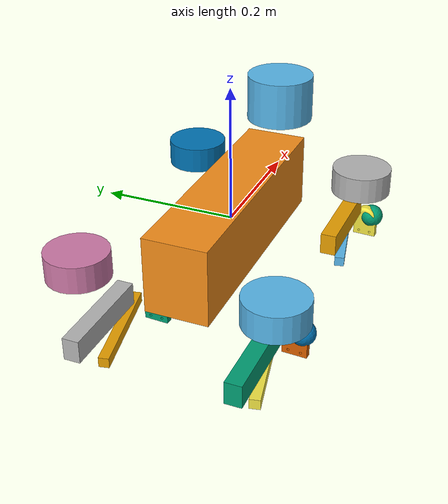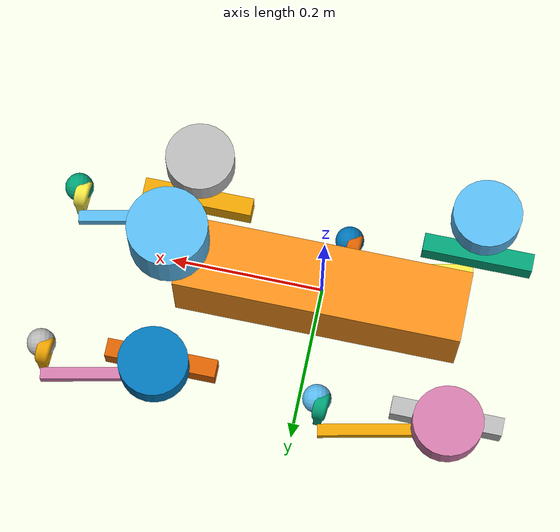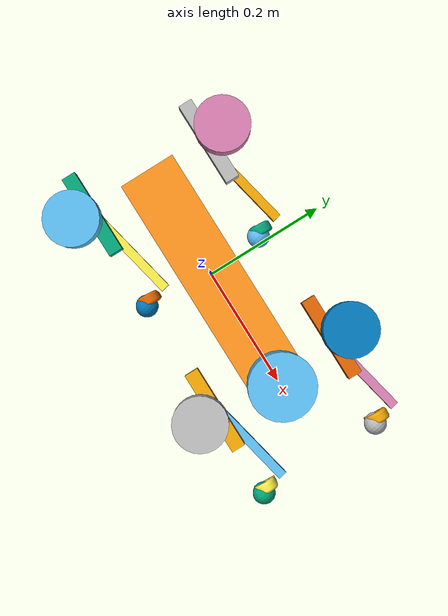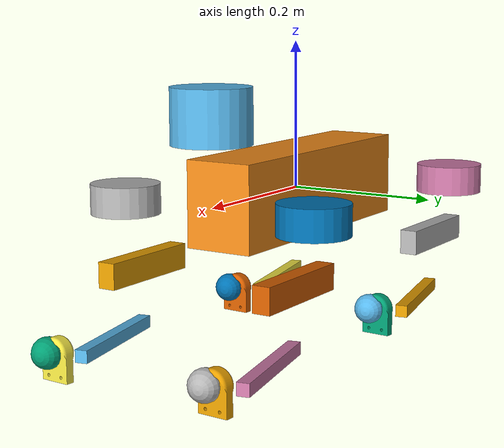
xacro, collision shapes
<?xml version="1.0"?>

<robot name="go2" xmlns:xacro="http://www.ros.org/wiki/xacro">

    <xacro:arg name="DEBUG" default="false"/>
    <xacro:arg name="gpu" default="true"/>
    <xacro:property name="gpu" value="$(arg gpu)" />
    <xacro:arg name="organize_cloud" default="true"/>
    <xacro:property name="organize_cloud" value="$(arg organize_cloud)" />
    <xacro:arg name="use_nominal_extrinsics" default="false"/>

    <xacro:include filename="$(find adog_description)/xacro/const.xacro"/>
    <xacro:include filename="$(find adog_description)/xacro/materials.xacro"/>
    <xacro:include filename="$(find adog_description)/xacro/leg.xacro"/>
    <xacro:include filename="$(find adog_description)/xacro/ros2_control.xacro"/>
    <xacro:include filename="$(find adog_description)/xacro/gazebo.xacro"/>

    <!-- Rotor related joint and link is only for demonstrate location. -->
    <!-- Actually, the rotor will rotate and the joint is not fixed. Reduction ratio should be considered. -->

    <!-- Debug mode will hung up the robot, use "true" or "false" to switch it. -->

    <xacro:if value="$(arg DEBUG)">
        <link name="world"/>
        <joint name="base_static_joint" type="fixed">
            <origin rpy="0 0 0" xyz="0 0 0"/>
            <parent link="world"/>
            <child link="base"/>
        </joint>
    </xacro:if>

    <link name="base"> </link>
    <joint name="floating_base" type="fixed">
        <origin rpy="0 0 0" xyz="0 0 0"/>
        <parent link="base"/>
        <child link="trunk"/>
    </joint>

    <xacro:include filename="$(find velodyne_description)/urdf/VLP-16.urdf.xacro"/>
    <xacro:VLP-16 parent="trunk" name="rslidar" topic="/rslidar_points" organize_cloud="${organize_cloud}" hz="10" samples="440" gpu="${gpu}">
      <origin xyz="0.2 0 0.08" rpy="0 0 0" />
    </xacro:VLP-16>

    <link name="camera_link">

    </link>
    <joint name="camera_joint" type="fixed">
        <origin rpy="0 0.0 0.0" xyz="0 0 0.45"/>
        <parent link="trunk"/>
        <child link="camera_link"/>
    </joint>

    <link name="camera_link_fake"></link>
  <joint name="camera_joint_fake" type="fixed">
    <origin xyz="0 0 0" rpy="-1.57 0 -1.57 "/>
    <parent link="camera_link"/>
    <child link="camera_link_fake"/>
  </joint>

    <link name="trunk">
        <visual>
            <origin rpy="0 0 0" xyz="0 0 0"/>
            <geometry>
                <mesh filename="file://$(find adog_description)/meshes/trunk.dae" scale="1 1 1"/>
            </geometry>
            <material name="orange"/>
        </visual>
        <collision>
            <origin rpy="0 0 0" xyz="0 0 0"/>
            <geometry>
                <box size="${trunk_length} ${trunk_width} ${trunk_height}"/>
            </geometry>
        </collision>
        <inertial>
            <origin rpy="0 0 0" xyz="${trunk_com_x} ${trunk_com_y} ${trunk_com_z}"/>
            <mass value="${trunk_mass}"/>
            <inertia
                ixx="${trunk_ixx}" ixy="${trunk_ixy}" ixz="${trunk_ixz}"
                iyy="${trunk_iyy}" iyz="${trunk_iyz}"
                izz="${trunk_izz}"/>
        </inertial>
    </link>

    <joint name="imu_joint" type="fixed">
        <parent link="trunk"/>
        <child link="imu_link"/>
        <origin rpy="0 0 0" xyz="0 0 0"/>
    </joint>

    <link name="imu_link">
        <inertial>
            <mass value="0.001"/>
            <origin rpy="0 0 0" xyz="0 0 0"/>
            <inertia ixx="0.0001" ixy="0" ixz="0" iyy="0.0001" iyz="0" izz="0.0001"/>
        </inertial>
        <visual>
            <origin rpy="0 0 0" xyz="0 0 0"/>
            <geometry>
                <box size="0.001 0.001 0.001"/>
            </geometry>
        </visual>
        <collision>
            <origin rpy="0 0 0" xyz="0 0 0"/>
            <geometry>
                <box size=".001 .001 .001"/>
            </geometry>
        </collision>
    </link>
    <xacro:leg name="FR" mirror="-1" mirror_dae= "False" front_hind="1"  front_hind_dae="True"  />
    <xacro:leg name="FL" mirror="1"  mirror_dae="True"   front_hind="1"  front_hind_dae="True"  />
    <xacro:leg name="RR" mirror="-1" mirror_dae="False"  front_hind="-1" front_hind_dae="False" />
    <xacro:leg name="RL" mirror="1"  mirror_dae="True"   front_hind="-1" front_hind_dae="False" />
</robot>

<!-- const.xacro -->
<robot xmlns:xacro="http://www.ros.org/wiki/xacro">

    <!-- Constants for robot dimensions -->
    <xacro:property name="PI" value="3.1415926535897931"/>
    <xacro:property name="stick_mass" value="0.00001"/>

    <!-- simplified collision value -->
    <xacro:property name="trunk_width" value="0.0935"/>
    <xacro:property name="trunk_length" value="0.3762"/>
    <xacro:property name="trunk_height" value="0.114"/>
    <xacro:property name="hip_radius" value="0.046"/>
    <xacro:property name="hip_length" value="0.04"/>
    <xacro:property name="thigh_shoulder_radius" value="0.041"/>
    <xacro:property name="thigh_shoulder_length" value="0.032"/>
    <xacro:property name="thigh_width" value="0.0245"/>
    <xacro:property name="thigh_height" value="0.034"/>
    <xacro:property name="calf_width" value="0.016"/>
    <xacro:property name="calf_height" value="0.016"/>
    <xacro:property name="foot_radius" value="0.02"/>
    <xacro:property name="stick_radius" value="0.01"/>
    <xacro:property name="stick_length" value="0.2"/>

    <!-- kinematic value -->
    <xacro:property name="thigh_offset" value="0.0687"/>
    <xacro:property name="thigh_length" value="0.150"/>
    <xacro:property name="calf_length" value="0.17"/>

    <!-- leg offset from trunk center value -->
    <xacro:property name="leg_offset_x" value="0.1934"/>
    <xacro:property name="leg_offset_y" value="0.0465"/>
    <xacro:property name="hip_offset" value="0.0955"/>

    <!-- offset of link locations (left front) -->
    <xacro:property name="hip_offset_x" value="0.0094746  "/>
    <xacro:property name="hip_offset_y" value="1"/>
    <xacro:property name="hip_offset_z" value="0.045871"/>

  <xacro:property name="thigh_offset_x" value="-0.00034926"/>
  <xacro:property name="thigh_offset_y" value="-0.26434"/>
 <xacro:property name="thigh_offset_z" value="-0.011244"/>

<xacro:property name="calf_offset_x" value="-1.0146E-05"/>
<xacro:property name="calf_offset_y" value="0.095136"/>
<xacro:property name="calf_offset_z" value="-0.0062383"/>

    <!-- joint limits -->
    <xacro:property name="damping" value="0.0"/>
    <xacro:property name="friction" value="0.0"/>
    <xacro:property name="hip_position_max" value="1.0472"/>
    <xacro:property name="hip_position_min" value="-1.0472"/>
    <xacro:property name="hip_velocity_max" value="30.1"/>
    <xacro:property name="hip_torque_max" value="23.7"/>
    <xacro:property name="thigh_position_max" value="3.4907"/>
    <xacro:property name="thigh_position_min" value="-1.5708"/>
    <xacro:property name="thigh_velocity_max" value="30.1"/>
    <xacro:property name="thigh_torque_max" value="23.7"/>
    <xacro:property name="calf_position_max" value="-0.83776"/>
    <xacro:property name="calf_position_min" value="-2.7227"/>
    <xacro:property name="calf_velocity_max" value="20.06"/>
    <xacro:property name="calf_torque_max" value="35.55"/>

    <!-- dynamics inertial value -->
    <!-- trunk -->
    <xacro:property name="trunk_mass" value="0.357167923727305"/>
    <xacro:property name="trunk_com_x" value="0.021112"/>
    <xacro:property name="trunk_com_y" value="0.00"/>
    <xacro:property name="trunk_com_z" value="-0.005366"/>
    <xacro:property name="trunk_ixx" value="0.000392114500575742"/>
    <xacro:property name="trunk_ixy" value="-4.49259695189766E-08"/>
    <xacro:property name="trunk_ixz" value="5.78512702264721E-08"/>
    <xacro:property name="trunk_iyy" value="0.000205317241420605"/>
    <xacro:property name="trunk_iyz" value="-4.59327733116678E-07"/>
    <xacro:property name="trunk_izz" value="0.000212416122465017"/>

    <!-- hip (left front) -->
    <xacro:property name="hip_mass" value="0.9473"/>
    <xacro:property name="hip_com_x" value="-0.0054"/>
    <xacro:property name="hip_com_y" value="0.00194"/>
    <xacro:property name="hip_com_z" value="-0.000105"/>
    <xacro:property name="hip_ixx" value="0.00078518"/>
    <xacro:property name="hip_ixy" value="3.1299E-07"/>
    <xacro:property name="hip_ixz" value="7.3036E-05"/>
    <xacro:property name="hip_iyy" value="0.00076332"/>
    <xacro:property name="hip_iyz" value="1.4387E-06"/>
    <xacro:property name="hip_izz" value="0.0011187"/>

    <!-- thigh -->
    <xacro:property name="thigh_mass" value="0.1966"/>
    <xacro:property name="thigh_com_x" value="-0.00374"/>
    <xacro:property name="thigh_com_y" value="-0.0223"/>
    <xacro:property name="thigh_com_z" value="-0.0327"/>
    <xacro:property name="thigh_ixx" value="0.00042657"/>
    <xacro:property name="thigh_ixy" value="2.0912E-19"/>
    <xacro:property name="thigh_ixz" value="8.8924E-21"/>
    <xacro:property name="thigh_iyy" value="7.5388E-05"/>
    <xacro:property name="thigh_iyz" value="-7.0744E-08"/>
    <xacro:property name="thigh_izz" value="0.00049709"/>

    <!-- calf -->
    <xacro:property name="calf_mass" value="0.085285"/>
    <xacro:property name="calf_com_x" value="0.00548"/>
    <xacro:property name="calf_com_y" value="-0.000975"/>
    <xacro:property name="calf_com_z" value="-0.115"/>
    <xacro:property name="calf_ixx" value="0.00017599"/>
    <xacro:property name="calf_ixy" value="-3.3662E-08"/>
    <xacro:property name="calf_ixz" value="4.1111E-22"/>
    <xacro:property name="calf_iyy" value="1.0357E-05"/>
    <xacro:property name="calf_iyz" value="9.1803E-20"/>
    <xacro:property name="calf_izz" value="0.00018571"/>

    <xacro:property name="wheel_mass" value="0.1"/>
    <xacro:property name="wheel_ixx" value="0.0001"/>
    <xacro:property name="wheel_ixy" value="0.0"/>
    <xacro:property name="wheel_ixz" value="0.0"/>
    <xacro:property name="wheel_iyy" value="0.0001"/>
    <xacro:property name="wheel_iyz" value="0.0"/>
    <xacro:property name="wheel_izz" value="0.0001"/>
    <xacro:property name="wheel_radius" value="0.05"/>
    <xacro:property name="wheel_torque_max" value="10.0"/>
    <xacro:property name="wheel_velocity_max" value="10.0"/>
    <xacro:property name="wheel_position_min" value="-1.57"/>
    <xacro:property name="wheel_position_max" value="1.57"/>

    <!-- foot -->
    <xacro:property name="foot_mass" value="0.06"/>

</robot>

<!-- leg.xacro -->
<robot xmlns:xacro="http://www.ros.org/wiki/xacro">

    <xacro:macro name="leg" params="name mirror mirror_dae front_hind front_hind_dae">

        <joint name="${name}_hip_joint" type="revolute">
            <xacro:if value="${(mirror_dae == False) and (front_hind_dae == True)}">
                <origin rpy="0 0 0" xyz="${leg_offset_x} ${-leg_offset_y} 0"/>
            </xacro:if>
            <xacro:if value="${(mirror_dae == True) and (front_hind_dae == True)}">
                <origin rpy="0 0 0" xyz="${leg_offset_x} ${leg_offset_y} 0"/>
            </xacro:if>
            <xacro:if value="${(mirror_dae == False) and (front_hind_dae == False)}">
                <origin rpy="0 0 0" xyz="${-leg_offset_x} ${-leg_offset_y} 0"/>
            </xacro:if>
            <xacro:if value="${(mirror_dae == True) and (front_hind_dae == False)}">
                <origin rpy="0 0 0" xyz="${-leg_offset_x} ${leg_offset_y} 0"/>
            </xacro:if>
            <parent link="trunk"/>
            <child link="${name}_hip"/>
            <axis xyz="1 0 0"/>
            <dynamics damping="${damping}" friction="${friction}"/>
            <xacro:if value="${(mirror_dae == True)}">
                <limit effort="${hip_torque_max}" velocity="${hip_velocity_max}" lower="${hip_position_min}"
                       upper="${hip_position_max}"/>
            </xacro:if>
            <xacro:if value="${(mirror_dae == False)}">
                <limit effort="${hip_torque_max}" velocity="${hip_velocity_max}" lower="${-hip_position_max}"
                       upper="${-hip_position_min}"/>
            </xacro:if>
        </joint>

        <link name="${name}_hip">
            <visual>
                <xacro:if value="${(mirror_dae == True) and (front_hind_dae == True)}">
                    <origin rpy="0 ${PI} ${-PI/2}" xyz="0 0 0"/>
                </xacro:if>
                <xacro:if value="${(mirror_dae == False) and (front_hind_dae == True)}">
                    <origin rpy="${PI} ${PI} ${PI/2}" xyz="0 0 0"/>
                </xacro:if>
                <xacro:if value="${(mirror_dae == True) and (front_hind_dae == False)}">
                    <origin rpy="${PI} ${PI} ${-PI/2}" xyz="0 0 0"/>
                </xacro:if>
                <xacro:if value="${(mirror_dae == False) and (front_hind_dae == False)}">
                    <origin rpy="0 ${PI} ${PI/2}" xyz="0 0 0"/>
                </xacro:if>
                <geometry>
                    <mesh filename="file://$(find adog_description)/meshes/link1.STL" scale="1 1 1"/>
                </geometry>
            </visual>
            <collision>
                <origin rpy="0 0 ${PI/2.0}" xyz="0 ${hip_offset*mirror} 0"/>
                <geometry>
                    <cylinder length="${hip_length}" radius="${hip_radius}"/>
                </geometry>
            </collision>
            <inertial>
                <origin rpy="0 0 0" xyz="${hip_com_x*front_hind} ${hip_com_y*mirror} ${hip_com_z}"/>
                <mass value="${hip_mass}"/>
                <inertia
                        ixx="${hip_ixx}" ixy="${hip_ixy*mirror*front_hind}" ixz="${hip_ixz*front_hind}"
                        iyy="${hip_iyy}" iyz="${hip_iyz*mirror}"
                        izz="${hip_izz}"/>
            </inertial>
        </link>

        <joint name="${name}_thigh_joint" type="revolute">
            <origin rpy="0 0 0" xyz="-0.00034926 ${thigh_offset*mirror} -0.011244"/>
            <parent link="${name}_hip"/>
            <child link="${name}_thigh"/>
            <axis xyz="0 1 0"/>
            <dynamics damping="${damping}" friction="${friction}"/>
            <limit effort="${thigh_torque_max}" velocity="${thigh_velocity_max}" lower="${thigh_position_min}"
                   upper="${thigh_position_max}"/>
        </joint>

      <link name="${name}_thigh">
    <visual>
        <!-- 处理旋转和位置变换 -->
        <xacro:if value="${mirror_dae == True}">
            <!-- 镜像翻转时，旋转 180° 或更改位置 -->
            <origin rpy="0 0 ${-PI/2}" xyz="0 0 0"/>
        </xacro:if>
        <xacro:if value="${mirror_dae == False}">
            <!-- 正常情况，无旋转或者根据需要微调位置 -->
            <origin rpy="0 0 ${-PI/2}" xyz="0 0 0"/>
        </xacro:if>
        <geometry>
            <xacro:if value="${mirror_dae == True}">
                <!-- 镜像模型 -->
                <mesh filename="file://$(find adog_description)/meshes/link2.STL" scale="-1 1 1"/>
            </xacro:if>
            <xacro:if value="${mirror_dae == False}">
                <!-- 正常模型 -->
                <mesh filename="file://$(find adog_description)/meshes/link2.STL" scale="1 1 1"/>
            </xacro:if>
                </geometry>
            </visual>
            <collision>
                <origin rpy="0 0 0" xyz="0 0 ${-thigh_length/2.0}"/>
                <geometry>
                    <box size="${thigh_length} ${thigh_width} ${thigh_height}"/>
                </geometry>
            </collision>
            <inertial>
                <origin rpy="0 0 0" xyz="${thigh_com_x} ${thigh_com_y*mirror} ${thigh_com_z}"/>
                <mass value="${thigh_mass}"/>
                <inertia
                        ixx="${thigh_ixx}" ixy="${thigh_ixy*mirror}" ixz="${thigh_ixz}"
                        iyy="${thigh_iyy}" iyz="${thigh_iyz*mirror}"
                        izz="${thigh_izz}"/>
            </inertial>
        </link>

        <joint name="${name}_calf_joint" type="revolute">
            <origin rpy="${PI/2} ${PI} ${PI}" xyz="0 0 ${-thigh_length}"/>
            <parent link="${name}_thigh"/>
            <child link="${name}_calf"/>
            <axis xyz="0 1 0"/>
            <dynamics damping="${damping}" friction="${friction}"/>
            <limit effort="${calf_torque_max}" velocity="${calf_velocity_max}" lower="${calf_position_min}"
                   upper="${calf_position_max}" position="-0.5"/>
        </joint>

        <link name="${name}_calf">
            <visual>
                <origin rpy="0 ${PI/12} 0" xyz="0 0 0"/>
                <geometry>
                    <mesh filename="file://$(find adog_description)/meshes/link3.STL" scale="1 1 1"/>
                </geometry>
            </visual>
            <collision>
                <origin rpy="0 ${PI/2.0} 0" xyz="0 0 ${-calf_length/2.0}"/>
                <geometry>
                    <box size="${calf_length} ${calf_width} ${calf_height}"/>
                </geometry>
            </collision>
            <inertial>
                <origin rpy="0 0 0" xyz="${calf_com_x} ${calf_com_y} ${calf_com_z}"/>
                <mass value="${calf_mass}"/>
                <inertia
                        ixx="${calf_ixx}" ixy="${calf_ixy}" ixz="${calf_ixz}"
                        iyy="${calf_iyy}" iyz="${calf_iyz}"
                        izz="${calf_izz}"/>
            </inertial>
        </link>

        <joint name="${name}_foot_fixed" type="fixed">0
            <origin rpy="0 0 0" xyz="-0.045  -0.0 ${-(calf_length)}"/>
            <parent link="${name}_calf"/>
            <child link="${name}_foot"/>
        </joint>

        <link name="${name}_foot">
            <visual>
                <origin rpy="0 0 0" xyz="0 0 0"/>
                <geometry>
                    <sphere radius="${foot_radius-0.01}"/>
                </geometry>
            </visual>
            <collision>
                <origin rpy="0 0 0" xyz="0 0 0"/>
                <geometry>
                    <sphere radius="${foot_radius}"/>
                </geometry>
            </collision>
            <inertial>
                <mass value="${foot_mass}"/>
                <inertia
                        ixx="${(2*foot_mass)/5.0*(foot_radius*foot_radius)}" ixy="0.0" ixz="0.0"
                        iyy="${(2*foot_mass)/5.0*(foot_radius*foot_radius)}" iyz="0.0"
                        izz="${(2*foot_mass)/5.0*(foot_radius*foot_radius)}"/>
            </inertial>
        </link>

        <joint name="${name}_wheel_joint" type="revolute">
    <origin rpy="0 ${PI/12} 0" xyz="-0.057 -0.020 ${-calf_length}"/>
    <parent link="${name}_calf"/>
    <child link="${name}_wheel_Link"/>
    <axis xyz="1 0 0"/>
    <dynamics damping="${damping}" friction="${friction}"/>
    <limit effort="${wheel_torque_max}" velocity="${wheel_velocity_max}" lower="${wheel_position_min}"
           upper="${wheel_position_max}"/>
</joint>

 <link name="${name}_wheel_Link">
    <visual>
        <origin rpy="${PI/2} 0 ${PI/2}" xyz="0 0 0"/>
        <geometry>
            <mesh filename="file://$(find adog_description)/meshes/foot.STL" scale="0.001 0.001 0.001"/>
        </geometry>
    </visual>
    <collision>
        <origin rpy="0 0 0" xyz="0 0 0"/>
        <geometry>
            <mesh filename="file://$(find adog_description)/meshes/foot.STL" scale="0.001 0.001 0.001"/>
        </geometry>
    </collision>
    <inertial>
        <origin rpy="0 0 0" xyz="0 0 0"/>
        <mass value="${wheel_mass}"/>
        <inertia
                ixx="${wheel_ixx}" ixy="${wheel_ixy}" ixz="${wheel_ixz}"
                iyy="${wheel_iyy}" iyz="${wheel_iyz}"
                izz="${wheel_izz}"/>
    </inertial>
</link>

    </xacro:macro>
</robot>

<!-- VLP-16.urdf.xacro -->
<robot xmlns:xacro="http://www.ros.org/wiki/xacro" name="VLP-16">
  <xacro:property name="M_PI" value="3.1415926535897931" />
  <xacro:macro name="VLP-16" params="*origin is_sim:=true parent:=base_link name:=velodyne tf_prefix:='' topic:=/velodyne_points organize_cloud:=false hz:=10 lasers:=16 samples:=1875 collision_range:=0.3 min_range:=0.0 max_range:=100.0 noise:=0.008 min_angle:=-${M_PI} max_angle:=${M_PI} gpu:=false">

    <joint name="${name}_base_mount_joint" type="fixed">
      <xacro:insert_block name="origin" />
      <parent link="${parent}"/>
      <child link="${name}_base_link"/>
    </joint>

    <link name="${name}_base_link">
      <inertial>
        <mass value="0.83"/>
        <origin xyz="0 0 0.03585"/>
        <inertia ixx="${(0.83 * (3.0*0.0516*0.0516 + 0.0717*0.0717)) / 12.0}" ixy="0" ixz="0"
          iyy="${(0.83 * (3.0*0.0516*0.0516 + 0.0717*0.0717)) / 12.0}" iyz="0"
          izz="${0.5 * 0.83 * (0.0516*0.0516)}"/>
      </inertial>
      <visual>
        <geometry>
          <mesh filename="package://velodyne_description/meshes/VLP16_base_1.dae" />
        </geometry>
      </visual>
      <visual>
        <geometry>
          <mesh filename="package://velodyne_description/meshes/VLP16_base_2.dae" />
        </geometry>
      </visual>
      <collision>
        <origin rpy="0 0 0" xyz="0 0 0.03585"/>
        <geometry>
          <cylinder radius="0.0516" length="0.0717"/>
        </geometry>
      </collision>
    </link>

    <joint name="${name}_base_scan_joint" type="fixed" >
      <origin xyz="0 0 0.0377" rpy="0 0 0" />
      <parent link="${name}_base_link" />
      <child link="${name}"/>
    </joint>

    <link name="${name}">
      <inertial>
        <mass value="0.01"/>
        <origin xyz="0 0 0"/>
        <inertia ixx="1e-7" ixy="0" ixz="0" iyy="1e-7" iyz="0" izz="1e-7"/>
      </inertial>
      <visual>
        <origin xyz="0 0 -0.0377" />
        <geometry>
          <mesh filename="package://velodyne_description/meshes/VLP16_scan.dae" />
        </geometry>
      </visual>
      <collision>
        <geometry>
          <sphere radius="0"/>
        </geometry>
      </collision>
    </link>

    <!-- Gazebo requires the velodyne_gazebo_plugins package -->
    <xacro:if value="${is_sim}">
        <gazebo reference="${name}">
            <xacro:if value="${gpu}">
                <sensor type="gpu_ray" name="${name}-VLP16">
                <pose>0 0 0 0 0 0</pose>
                <visualize>false</visualize>
                <update_rate>${hz}</update_rate>
                <ray>
                    <scan>
                    <horizontal>
                        <samples>${samples}</samples>
                        <resolution>1</resolution>
                        <min_angle>${min_angle}</min_angle>
                        <max_angle>${max_angle}</max_angle>
                    </horizontal>
                    <vertical>
                        <samples>${lasers}</samples>
                        <resolution>1</resolution>
                        <min_angle>-${15.0*M_PI/180.0}</min_angle>
                        <max_angle> ${15.0*M_PI/180.0}</max_angle>
                    </vertical>
                    </scan>
                    <range>
                    <min>${collision_range}</min>
                    <max>${max_range+1}</max>
                    <resolution>0.001</resolution>
                    </range>
                    <noise>
                    <type>gaussian</type>
                    <mean>0.0</mean>
                    <stddev>0.0</stddev>
                    </noise>
                </ray>
                <plugin name="gazebo_ros_laser_controller" filename="libgazebo_ros_velodyne_laser.so">
                    <ros>
                    <namespace>/${name}</namespace>
                    <remapping>~/out:=${topic}</remapping>
                    </ros>
                    <tf_prefix>${tf_prefix}</tf_prefix>
                    <frame_name>${name}</frame_name>
                    <organize_cloud>${organize_cloud}</organize_cloud>
                    <min_range>${min_range}</min_range>
                    <max_range>${max_range}</max_range>
                    <gaussian_noise>${noise}</gaussian_noise>
                </plugin>
                </sensor>
            </xacro:if>
            <xacro:unless value="${gpu}">
                <sensor type="ray" name="${name}-VLP16">
                <pose>0 0 0 0 0 0</pose>
                <visualize>false</visualize>
                <update_rate>${hz}</update_rate>
                <ray>
                    <scan>
                    <horizontal>
                        <samples>${samples}</samples>
                        <resolution>1</resolution>
                        <min_angle>${min_angle}</min_angle>
                        <max_angle>${max_angle}</max_angle>
                    </horizontal>
                    <vertical>
                        <samples>${lasers}</samples>
                        <resolution>1</resolution>
                        <min_angle>-${15.0*M_PI/180.0}</min_angle>
                        <max_angle> ${15.0*M_PI/180.0}</max_angle>
                    </vertical>
                    </scan>
                    <range>
                    <min>${collision_range}</min>
                    <max>${max_range+1}</max>
                    <resolution>0.001</resolution>
                    </range>
                    <noise>
                    <type>gaussian</type>
                    <mean>0.0</mean>
                    <stddev>0.0</stddev>
                    </noise>
                </ray>
                <plugin name="gazebo_ros_laser_controller" filename="libgazebo_ros_velodyne_laser.so">
                    <ros>
                    <namespace>/${name}</namespace>
                    <remapping>~/out:=${topic}</remapping>
                    </ros>
                    <tf_prefix>${tf_prefix}</tf_prefix>
                    <frame_name>${name}</frame_name>
                    <organize_cloud>${organize_cloud}</organize_cloud>
                    <min_range>${min_range}</min_range>
                    <max_range>${max_range}</max_range>
                    <gaussian_noise>${noise}</gaussian_noise>
                </plugin>
                </sensor>
            </xacro:unless>
        </gazebo>
    </xacro:if>

  </xacro:macro>
</robot>
